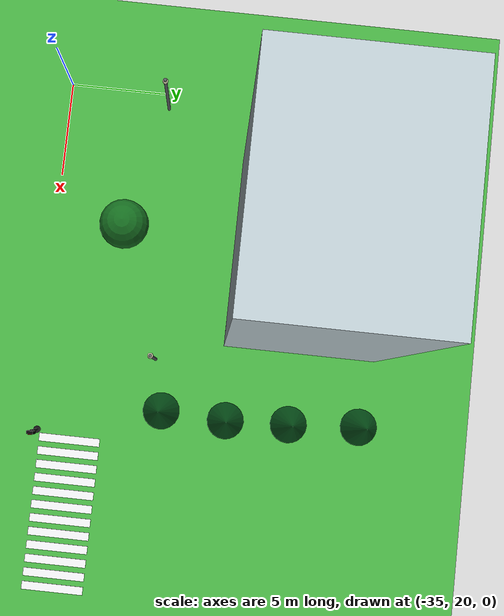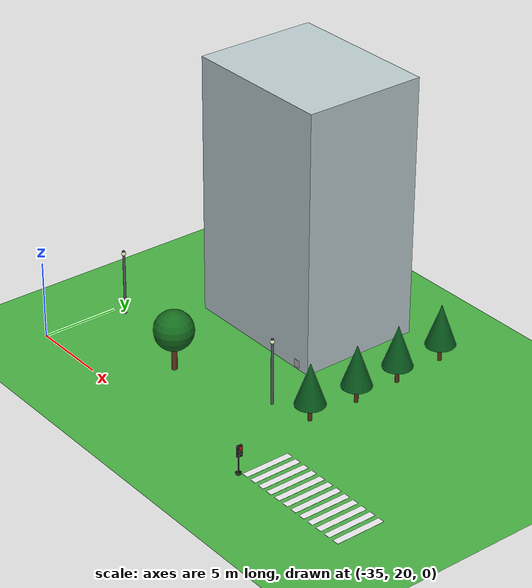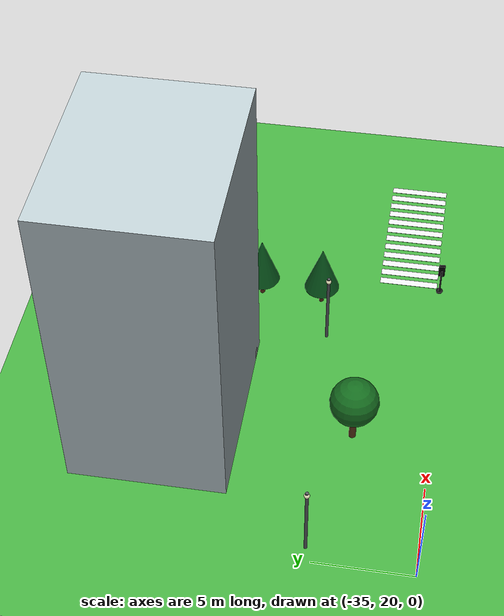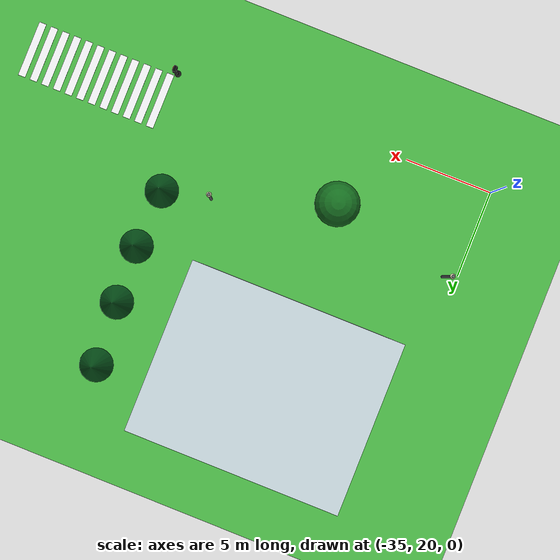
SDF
<sdf version="1.10">
 <world name="city_second">
  <model name="ground_plane">
   <static>true</static>
   <link name="link">
    <collision name="collision">
     <geometry><plane><normal>0 0 1</normal><size>300 300</size></plane></geometry>
    </collision>
    <visual name="visual">
     <geometry><plane><normal>0 0 1</normal><size>300 300</size></plane></geometry>
     <material>
      <ambient>0.280000001 0.689999998 0.25999999 1</ambient>
      <diffuse>0.280000001 0.689999998 0.25999999 1</diffuse>
      <specular>0.0299999993 0.0299999993 0.0299999993 1</specular>
     </material>
    </visual>
    <inertial>
     <mass>1</mass>
     <inertia><ixx>1</ixx><ixy>0</ixy><ixz>0</ixz><iyy>1</iyy><iyz>0</iyz><izz>1</izz></inertia>
    </inertial>
   </link>
  </model>
  <model name="house_3_1_1">
   <static>true</static>
   <pose>-26.744800000000001 33.608600000000003 8.5 0 0 0</pose>
   <link name="link">
    <collision name="collision"><geometry><box><size>10 8 17</size></box></geometry></collision>
    <visual name="visual">
     <geometry><box><size>10 8 17</size></box></geometry>
     <material>
      <ambient>0.74000001 0.800000012 0.819999993 1</ambient>
      <diffuse>0.74000001 0.800000012 0.819999993 1</diffuse>
      <specular>0.0299999993 0.0299999993 0.0299999993 1</specular>
     </material>
    </visual>
    <inertial>
     <mass>1</mass>
     <inertia><ixx>1</ixx><ixy>0</ixy><ixz>0</ixz><iyy>1</iyy><iyz>0</iyz><izz>1</izz></inertia>
    </inertial>
   </link>
  </model>
  <model name="crosswalk_h_1_1_south_7_6">
   <static>true</static>
   <pose>-12.1145 22.0322 0.017000000000000001 0 0 0</pose>
   <link name="stripe_1">
    <collision name="collision">
     <geometry><box><size>0.41999999999999998 3.2000000000000002 0.01</size></box></geometry>
    </collision>
    <visual name="visual">
     <geometry><box><size>0.41999999999999998 3.2000000000000002 0.01</size></box></geometry>
     <material>
      <ambient>0.920000017 0.920000017 0.930000007 1</ambient>
      <diffuse>0.920000017 0.920000017 0.930000007 1</diffuse>
      <specular>0.0299999993 0.0299999993 0.0299999993 1</specular>
     </material>
    </visual>
    <pose>-3.8500000000000001 0 0 0 0 0</pose>
    <inertial>
     <mass>1</mass>
     <inertia><ixx>1</ixx><ixy>0</ixy><ixz>0</ixz><iyy>1</iyy><iyz>0</iyz><izz>1</izz></inertia>
    </inertial>
   </link>
   <link name="stripe_2">
    <collision name="collision">
     <geometry><box><size>0.41999999999999998 3.2000000000000002 0.01</size></box></geometry>
    </collision>
    <visual name="visual">
     <geometry><box><size>0.41999999999999998 3.2000000000000002 0.01</size></box></geometry>
     <material>
      <ambient>0.920000017 0.920000017 0.930000007 1</ambient>
      <diffuse>0.920000017 0.920000017 0.930000007 1</diffuse>
      <specular>0.0299999993 0.0299999993 0.0299999993 1</specular>
     </material>
    </visual>
    <pose>-3.1500000000000004 0 0 0 0 0</pose>
    <inertial>
     <mass>1</mass>
     <inertia><ixx>1</ixx><ixy>0</ixy><ixz>0</ixz><iyy>1</iyy><iyz>0</iyz><izz>1</izz></inertia>
    </inertial>
   </link>
   <link name="stripe_3">
    <collision name="collision">
     <geometry><box><size>0.41999999999999998 3.2000000000000002 0.01</size></box></geometry>
    </collision>
    <visual name="visual">
     <geometry><box><size>0.41999999999999998 3.2000000000000002 0.01</size></box></geometry>
     <material>
      <ambient>0.920000017 0.920000017 0.930000007 1</ambient>
      <diffuse>0.920000017 0.920000017 0.930000007 1</diffuse>
      <specular>0.0299999993 0.0299999993 0.0299999993 1</specular>
     </material>
    </visual>
    <pose>-2.4499999999999993 0 0 0 0 0</pose>
    <inertial>
     <mass>1</mass>
     <inertia><ixx>1</ixx><ixy>0</ixy><ixz>0</ixz><iyy>1</iyy><iyz>0</iyz><izz>1</izz></inertia>
    </inertial>
   </link>
   <link name="stripe_4">
    <collision name="collision">
     <geometry><box><size>0.41999999999999998 3.2000000000000002 0.01</size></box></geometry>
    </collision>
    <visual name="visual">
     <geometry><box><size>0.41999999999999998 3.2000000000000002 0.01</size></box></geometry>
     <material>
      <ambient>0.920000017 0.920000017 0.930000007 1</ambient>
      <diffuse>0.920000017 0.920000017 0.930000007 1</diffuse>
      <specular>0.0299999993 0.0299999993 0.0299999993 1</specular>
     </material>
    </visual>
    <pose>-1.75 0 0 0 0 0</pose>
    <inertial>
     <mass>1</mass>
     <inertia><ixx>1</ixx><ixy>0</ixy><ixz>0</ixz><iyy>1</iyy><iyz>0</iyz><izz>1</izz></inertia>
    </inertial>
   </link>
   <link name="stripe_5">
    <collision name="collision">
     <geometry><box><size>0.41999999999999998 3.2000000000000002 0.01</size></box></geometry>
    </collision>
    <visual name="visual">
     <geometry><box><size>0.41999999999999998 3.2000000000000002 0.01</size></box></geometry>
     <material>
      <ambient>0.920000017 0.920000017 0.930000007 1</ambient>
      <diffuse>0.920000017 0.920000017 0.930000007 1</diffuse>
      <specular>0.0299999993 0.0299999993 0.0299999993 1</specular>
     </material>
    </visual>
    <pose>-1.0500000000000007 0 0 0 0 0</pose>
    <inertial>
     <mass>1</mass>
     <inertia><ixx>1</ixx><ixy>0</ixy><ixz>0</ixz><iyy>1</iyy><iyz>0</iyz><izz>1</izz></inertia>
    </inertial>
   </link>
   <link name="stripe_6">
    <collision name="collision">
     <geometry><box><size>0.41999999999999998 3.2000000000000002 0.01</size></box></geometry>
    </collision>
    <visual name="visual">
     <geometry><box><size>0.41999999999999998 3.2000000000000002 0.01</size></box></geometry>
     <material>
      <ambient>0.920000017 0.920000017 0.930000007 1</ambient>
      <diffuse>0.920000017 0.920000017 0.930000007 1</diffuse>
      <specular>0.0299999993 0.0299999993 0.0299999993 1</specular>
     </material>
    </visual>
    <pose>-0.34999999999999964 0 0 0 0 0</pose>
    <inertial>
     <mass>1</mass>
     <inertia><ixx>1</ixx><ixy>0</ixy><ixz>0</ixz><iyy>1</iyy><iyz>0</iyz><izz>1</izz></inertia>
    </inertial>
   </link>
   <link name="stripe_7">
    <collision name="collision">
     <geometry><box><size>0.41999999999999998 3.2000000000000002 0.01</size></box></geometry>
    </collision>
    <visual name="visual">
     <geometry><box><size>0.41999999999999998 3.2000000000000002 0.01</size></box></geometry>
     <material>
      <ambient>0.920000017 0.920000017 0.930000007 1</ambient>
      <diffuse>0.920000017 0.920000017 0.930000007 1</diffuse>
      <specular>0.0299999993 0.0299999993 0.0299999993 1</specular>
     </material>
    </visual>
    <pose>0.34999999999999964 0 0 0 0 0</pose>
    <inertial>
     <mass>1</mass>
     <inertia><ixx>1</ixx><ixy>0</ixy><ixz>0</ixz><iyy>1</iyy><iyz>0</iyz><izz>1</izz></inertia>
    </inertial>
   </link>
   <link name="stripe_8">
    <collision name="collision">
     <geometry><box><size>0.41999999999999998 3.2000000000000002 0.01</size></box></geometry>
    </collision>
    <visual name="visual">
     <geometry><box><size>0.41999999999999998 3.2000000000000002 0.01</size></box></geometry>
     <material>
      <ambient>0.920000017 0.920000017 0.930000007 1</ambient>
      <diffuse>0.920000017 0.920000017 0.930000007 1</diffuse>
      <specular>0.0299999993 0.0299999993 0.0299999993 1</specular>
     </material>
    </visual>
    <pose>1.0500000000000007 0 0 0 0 0</pose>
    <inertial>
     <mass>1</mass>
     <inertia><ixx>1</ixx><ixy>0</ixy><ixz>0</ixz><iyy>1</iyy><iyz>0</iyz><izz>1</izz></inertia>
    </inertial>
   </link>
   <link name="stripe_9">
    <collision name="collision">
     <geometry><box><size>0.41999999999999998 3.2000000000000002 0.01</size></box></geometry>
    </collision>
    <visual name="visual">
     <geometry><box><size>0.41999999999999998 3.2000000000000002 0.01</size></box></geometry>
     <material>
      <ambient>0.920000017 0.920000017 0.930000007 1</ambient>
      <diffuse>0.920000017 0.920000017 0.930000007 1</diffuse>
      <specular>0.0299999993 0.0299999993 0.0299999993 1</specular>
     </material>
    </visual>
    <pose>1.75 0 0 0 0 0</pose>
    <inertial>
     <mass>1</mass>
     <inertia><ixx>1</ixx><ixy>0</ixy><ixz>0</ixz><iyy>1</iyy><iyz>0</iyz><izz>1</izz></inertia>
    </inertial>
   </link>
   <link name="stripe_10">
    <collision name="collision">
     <geometry><box><size>0.41999999999999998 3.2000000000000002 0.01</size></box></geometry>
    </collision>
    <visual name="visual">
     <geometry><box><size>0.41999999999999998 3.2000000000000002 0.01</size></box></geometry>
     <material>
      <ambient>0.920000017 0.920000017 0.930000007 1</ambient>
      <diffuse>0.920000017 0.920000017 0.930000007 1</diffuse>
      <specular>0.0299999993 0.0299999993 0.0299999993 1</specular>
     </material>
    </visual>
    <pose>2.4499999999999993 0 0 0 0 0</pose>
    <inertial>
     <mass>1</mass>
     <inertia><ixx>1</ixx><ixy>0</ixy><ixz>0</ixz><iyy>1</iyy><iyz>0</iyz><izz>1</izz></inertia>
    </inertial>
   </link>
   <link name="stripe_11">
    <collision name="collision">
     <geometry><box><size>0.41999999999999998 3.2000000000000002 0.01</size></box></geometry>
    </collision>
    <visual name="visual">
     <geometry><box><size>0.41999999999999998 3.2000000000000002 0.01</size></box></geometry>
     <material>
      <ambient>0.920000017 0.920000017 0.930000007 1</ambient>
      <diffuse>0.920000017 0.920000017 0.930000007 1</diffuse>
      <specular>0.0299999993 0.0299999993 0.0299999993 1</specular>
     </material>
    </visual>
    <pose>3.1500000000000004 0 0 0 0 0</pose>
    <inertial>
     <mass>1</mass>
     <inertia><ixx>1</ixx><ixy>0</ixy><ixz>0</ixz><iyy>1</iyy><iyz>0</iyz><izz>1</izz></inertia>
    </inertial>
   </link>
   <link name="stripe_12">
    <collision name="collision">
     <geometry><box><size>0.41999999999999998 3.2000000000000002 0.01</size></box></geometry>
    </collision>
    <visual name="visual">
     <geometry><box><size>0.41999999999999998 3.2000000000000002 0.01</size></box></geometry>
     <material>
      <ambient>0.920000017 0.920000017 0.930000007 1</ambient>
      <diffuse>0.920000017 0.920000017 0.930000007 1</diffuse>
      <specular>0.0299999993 0.0299999993 0.0299999993 1</specular>
     </material>
    </visual>
    <pose>3.8499999999999996 0 0 0 0 0</pose>
    <inertial>
     <mass>1</mass>
     <inertia><ixx>1</ixx><ixy>0</ixy><ixz>0</ixz><iyy>1</iyy><iyz>0</iyz><izz>1</izz></inertia>
    </inertial>
   </link>
  </model>
  <model name="lamp_1_2_16">
   <static>true</static>
   <pose>-34.215200000000003 25.3385 2.2000000000000002 0 0 0</pose>
   <link name="link">
    <collision name="collision">
     <geometry>
      <cylinder><radius>0.080000000000000002</radius><length>4.4000000000000004</length></cylinder>
     </geometry>
    </collision>
    <visual name="pole">
     <geometry>
      <cylinder><radius>0.080000000000000002</radius><length>4.4000000000000004</length></cylinder>
     </geometry>
     <material>
      <ambient>0.349999994 0.360000014 0.379999995 1</ambient>
      <diffuse>0.349999994 0.360000014 0.379999995 1</diffuse>
      <specular>0.0299999993 0.0299999993 0.0299999993 1</specular>
     </material>
    </visual>
    <visual name="lamp_head">
     <pose>0 0 2 0 0 0</pose>
     <geometry><sphere><radius>0.14000000000000001</radius></sphere></geometry>
     <material>
      <ambient>0.959999979 0.939999998 0.779999971 1</ambient>
      <diffuse>0.959999979 0.939999998 0.779999971 1</diffuse>
      <specular>0.0299999993 0.0299999993 0.0299999993 1</specular>
     </material>
    </visual>
    <inertial>
     <mass>1</mass>
     <inertia><ixx>1</ixx><ixy>0</ixy><ixz>0</ixz><iyy>1</iyy><iyz>0</iyz><izz>1</izz></inertia>
    </inertial>
   </link>
  </model>
  <model name="lamp_1_2_17">
   <static>true</static>
   <pose>-20.669599999999999 26.0932 2.2000000000000002 0 0 0</pose>
   <link name="link">
    <collision name="collision">
     <geometry>
      <cylinder><radius>0.080000000000000002</radius><length>4.4000000000000004</length></cylinder>
     </geometry>
    </collision>
    <visual name="pole">
     <geometry>
      <cylinder><radius>0.080000000000000002</radius><length>4.4000000000000004</length></cylinder>
     </geometry>
     <material>
      <ambient>0.349999994 0.360000014 0.379999995 1</ambient>
      <diffuse>0.349999994 0.360000014 0.379999995 1</diffuse>
      <specular>0.0299999993 0.0299999993 0.0299999993 1</specular>
     </material>
    </visual>
    <visual name="lamp_head">
     <pose>0 0 2 0 0 0</pose>
     <geometry><sphere><radius>0.14000000000000001</radius></sphere></geometry>
     <material>
      <ambient>0.959999979 0.939999998 0.779999971 1</ambient>
      <diffuse>0.959999979 0.939999998 0.779999971 1</diffuse>
      <specular>0.0299999993 0.0299999993 0.0299999993 1</specular>
     </material>
    </visual>
    <inertial>
     <mass>1</mass>
     <inertia><ixx>1</ixx><ixy>0</ixy><ixz>0</ixz><iyy>1</iyy><iyz>0</iyz><izz>1</izz></inertia>
    </inertial>
   </link>
  </model>
  <model name="Oak tree_1">
   <static>true</static>
   <pose>-27.205400000000001 23.9285 0 0 0 0</pose>
   <link name="link">
    <collision name="footprint">
     <pose>0 0 0.050000000000000003 0 0 0</pose>
     <geometry>
      <cylinder><radius>0.90000000000000002</radius><length>0.10000000000000001</length></cylinder>
     </geometry>
    </collision>
    <visual name="trunk">
     <pose>0 0 1.1000000000000001 0 0 0</pose>
     <geometry>
      <cylinder><radius>0.17999999999999999</radius><length>2.2000000000000002</length></cylinder>
     </geometry>
     <material>
      <ambient>0.379999995 0.219999999 0.109999999 1</ambient>
      <diffuse>0.379999995 0.219999999 0.109999999 1</diffuse>
      <specular>0.119999997 0.119999997 0.119999997 1</specular>
      <emissive>0 0 0 1</emissive>
     </material>
    </visual>
    <visual name="crown">
     <pose>0 0 2.6499999999999999 0 0 0</pose>
     <geometry><sphere><radius>1.25</radius></sphere></geometry>
     <material>
      <ambient>0.0799999982 0.419999987 0.119999997 1</ambient>
      <diffuse>0.0799999982 0.419999987 0.119999997 1</diffuse>
      <specular>0.119999997 0.119999997 0.119999997 1</specular>
      <emissive>0 0 0 1</emissive>
     </material>
    </visual>
    <inertial>
     <mass>1</mass>
     <inertia><ixx>1</ixx><ixy>0</ixy><ixz>0</ixz><iyy>1</iyy><iyz>0</iyz><izz>1</izz></inertia>
    </inertial>
   </link>
  </model>
  <model name="Pine Tree">
   <static>true</static>
   <pose>-18.249400000000001 36.9146 0 0 0 0</pose>
   <link name="link">
    <collision name="footprint">
     <pose>0 0 0.050000000000000003 0 0 0</pose>
     <geometry>
      <cylinder><radius>0.65000000000000002</radius><length>0.10000000000000001</length></cylinder>
     </geometry>
    </collision>
    <visual name="trunk">
     <pose>0 0 0.90000000000000002 0 0 0</pose>
     <geometry><cylinder><radius>0.13</radius><length>1.8</length></cylinder></geometry>
     <material>
      <ambient>0.360000014 0.200000003 0.100000001 1</ambient>
      <diffuse>0.360000014 0.200000003 0.100000001 1</diffuse>
      <specular>0.119999997 0.119999997 0.119999997 1</specular>
      <emissive>0 0 0 1</emissive>
     </material>
    </visual>
    <visual name="crown">
     <pose>0 0 2.4500000000000002 0 0 0</pose>
     <geometry><cone><radius>0.94999999999999996</radius><length>2.7000000000000002</length></cone></geometry>
     <material>
      <ambient>0.0299999993 0.340000004 0.109999999 1</ambient>
      <diffuse>0.0299999993 0.340000004 0.109999999 1</diffuse>
      <specular>0.119999997 0.119999997 0.119999997 1</specular>
      <emissive>0 0 0 1</emissive>
     </material>
    </visual>
    <inertial>
     <mass>1</mass>
     <inertia><ixx>1</ixx><ixy>0</ixy><ixz>0</ixz><iyy>1</iyy><iyz>0</iyz><izz>1</izz></inertia>
    </inertial>
   </link>
  </model>
  <model name="Pine Tree_0">
   <static>true</static>
   <pose>-18.005600000000001 33.315300000000001 0 0 0 0</pose>
   <link name="link">
    <collision name="footprint">
     <pose>0 0 0.050000000000000003 0 0 0</pose>
     <geometry>
      <cylinder><radius>0.65000000000000002</radius><length>0.10000000000000001</length></cylinder>
     </geometry>
    </collision>
    <visual name="trunk">
     <pose>0 0 0.90000000000000002 0 0 0</pose>
     <geometry><cylinder><radius>0.13</radius><length>1.8</length></cylinder></geometry>
     <material>
      <ambient>0.360000014 0.200000003 0.100000001 1</ambient>
      <diffuse>0.360000014 0.200000003 0.100000001 1</diffuse>
      <specular>0.119999997 0.119999997 0.119999997 1</specular>
      <emissive>0 0 0 1</emissive>
     </material>
    </visual>
    <visual name="crown">
     <pose>0 0 2.4500000000000002 0 0 0</pose>
     <geometry><cone><radius>0.94999999999999996</radius><length>2.7000000000000002</length></cone></geometry>
     <material>
      <ambient>0.0299999993 0.340000004 0.109999999 1</ambient>
      <diffuse>0.0299999993 0.340000004 0.109999999 1</diffuse>
      <specular>0.119999997 0.119999997 0.119999997 1</specular>
      <emissive>0 0 0 1</emissive>
     </material>
    </visual>
    <inertial>
     <mass>1</mass>
     <inertia><ixx>1</ixx><ixy>0</ixy><ixz>0</ixz><iyy>1</iyy><iyz>0</iyz><izz>1</izz></inertia>
    </inertial>
   </link>
  </model>
  <model name="Pine Tree_1">
   <static>true</static>
   <pose>-17.865100000000002 30.0685 0 0 0 0</pose>
   <link name="link">
    <collision name="footprint">
     <pose>0 0 0.050000000000000003 0 0 0</pose>
     <geometry>
      <cylinder><radius>0.65000000000000002</radius><length>0.10000000000000001</length></cylinder>
     </geometry>
    </collision>
    <visual name="trunk">
     <pose>0 0 0.90000000000000002 0 0 0</pose>
     <geometry><cylinder><radius>0.13</radius><length>1.8</length></cylinder></geometry>
     <material>
      <ambient>0.360000014 0.200000003 0.100000001 1</ambient>
      <diffuse>0.360000014 0.200000003 0.100000001 1</diffuse>
      <specular>0.119999997 0.119999997 0.119999997 1</specular>
      <emissive>0 0 0 1</emissive>
     </material>
    </visual>
    <visual name="crown">
     <pose>0 0 2.4500000000000002 0 0 0</pose>
     <geometry><cone><radius>0.94999999999999996</radius><length>2.7000000000000002</length></cone></geometry>
     <material>
      <ambient>0.0299999993 0.340000004 0.109999999 1</ambient>
      <diffuse>0.0299999993 0.340000004 0.109999999 1</diffuse>
      <specular>0.119999997 0.119999997 0.119999997 1</specular>
      <emissive>0 0 0 1</emissive>
     </material>
    </visual>
    <inertial>
     <mass>1</mass>
     <inertia><ixx>1</ixx><ixy>0</ixy><ixz>0</ixz><iyy>1</iyy><iyz>0</iyz><izz>1</izz></inertia>
    </inertial>
   </link>
  </model>
  <model name="Pine Tree_6">
   <static>true</static>
   <pose>-18.019400000000001 26.7318 0 0 0 0</pose>
   <link name="link">
    <collision name="footprint">
     <pose>0 0 0.050000000000000003 0 0 0</pose>
     <geometry>
      <cylinder><radius>0.65000000000000002</radius><length>0.10000000000000001</length></cylinder>
     </geometry>
    </collision>
    <visual name="trunk">
     <pose>0 0 0.90000000000000002 0 0 0</pose>
     <geometry><cylinder><radius>0.13</radius><length>1.8</length></cylinder></geometry>
     <material>
      <ambient>0.360000014 0.200000003 0.100000001 1</ambient>
      <diffuse>0.360000014 0.200000003 0.100000001 1</diffuse>
      <specular>0.119999997 0.119999997 0.119999997 1</specular>
      <emissive>0 0 0 1</emissive>
     </material>
    </visual>
    <visual name="crown">
     <pose>0 0 2.4500000000000002 0 0 0</pose>
     <geometry><cone><radius>0.94999999999999996</radius><length>2.7000000000000002</length></cone></geometry>
     <material>
      <ambient>0.0299999993 0.340000004 0.109999999 1</ambient>
      <diffuse>0.0299999993 0.340000004 0.109999999 1</diffuse>
      <specular>0.119999997 0.119999997 0.119999997 1</specular>
      <emissive>0 0 0 1</emissive>
     </material>
    </visual>
    <inertial>
     <mass>1</mass>
     <inertia><ixx>1</ixx><ixy>0</ixy><ixz>0</ixz><iyy>1</iyy><iyz>0</iyz><izz>1</izz></inertia>
    </inertial>
   </link>
  </model>
  <model name="simple_traffic_light_red_east_6">
   <static>true</static>
   <pose>-16.3438603016297 20.282682133962247 -2.7755575615628914e-17 0 0 -1.5707999672671742</pose>
   <link name="base">
    <pose>0 0 0.040000000000000001 0 0 0</pose>
    <collision name="collision">
     <geometry>
      <cylinder><radius>0.17999999999999999</radius><length>0.080000000000000002</length></cylinder>
     </geometry>
    </collision>
    <visual name="visual">
     <geometry>
      <cylinder><radius>0.17999999999999999</radius><length>0.080000000000000002</length></cylinder>
     </geometry>
     <material>
      <ambient>0.0799999982 0.0799999982 0.0799999982 1</ambient>
      <diffuse>0.0799999982 0.0799999982 0.0799999982 1</diffuse>
      <specular>0.150000006 0.150000006 0.150000006 1</specular>
      <emissive>0 0 0 1</emissive>
     </material>
    </visual>
    <inertial>
     <mass>1</mass>
     <inertia><ixx>1</ixx><ixy>0</ixy><ixz>0</ixz><iyy>1</iyy><iyz>0</iyz><izz>1</izz></inertia>
    </inertial>
   </link>
   <link name="pole">
    <pose>-3.907985046680551e-14 -1.4210854715202004e-14 0.80000000000000004 0 0 -6.6613381477509392e-16</pose>
    <collision name="collision">
     <geometry>
      <cylinder><radius>0.044999999999999998</radius><length>1.6000000000000001</length></cylinder>
     </geometry>
    </collision>
    <visual name="visual">
     <geometry>
      <cylinder><radius>0.044999999999999998</radius><length>1.6000000000000001</length></cylinder>
     </geometry>
     <material>
      <ambient>0.0799999982 0.0799999982 0.0799999982 1</ambient>
      <diffuse>0.0799999982 0.0799999982 0.0799999982 1</diffuse>
      <specular>0.150000006 0.150000006 0.150000006 1</specular>
      <emissive>0 0 0 1</emissive>
     </material>
    </visual>
    <inertial>
     <mass>1</mass>
     <inertia><ixx>1</ixx><ixy>0</ixy><ixz>0</ixz><iyy>1</iyy><iyz>0</iyz><izz>1</izz></inertia>
    </inertial>
   </link>
   <link name="signal_box">
    <pose>-2.1316282072803006e-14 0.089999999999982094 1.5500000000000003 0 0 -6.6613381477509392e-16</pose>
    <collision name="collision">
     <geometry><box><size>0.34000000000000002 0.16 0.71999999999999997</size></box></geometry>
    </collision>
    <visual name="visual">
     <geometry><box><size>0.34000000000000002 0.16 0.71999999999999997</size></box></geometry>
     <material>
      <ambient>0.0199999996 0.0199999996 0.0199999996 1</ambient>
      <diffuse>0.0199999996 0.0199999996 0.0199999996 1</diffuse>
      <specular>0.150000006 0.150000006 0.150000006 1</specular>
      <emissive>0 0 0 1</emissive>
     </material>
    </visual>
    <inertial>
     <mass>1</mass>
     <inertia><ixx>1</ixx><ixy>0</ixy><ixz>0</ixz><iyy>1</iyy><iyz>0</iyz><izz>1</izz></inertia>
    </inertial>
   </link>
   <link name="red_lens">
    <pose>-2.1316282072803006e-14 0.18099999999997607 1.7800000000000002 1.5707963267999998 -2.3551386881478525e-16 4.7887819989849136e-15</pose>
    <collision name="collision">
     <geometry><cylinder><radius>0.105</radius><length>0.035000000000000003</length></cylinder></geometry>
    </collision>
    <visual name="visual">
     <geometry><cylinder><radius>0.105</radius><length>0.035000000000000003</length></cylinder></geometry>
     <material>
      <ambient>1 0.0199999996 0.0199999996 1</ambient>
      <diffuse>1 0.0199999996 0.0199999996 1</diffuse>
      <specular>0.150000006 0.150000006 0.150000006 1</specular>
      <emissive>1 0.0199999996 0.0199999996 1</emissive>
     </material>
    </visual>
    <inertial>
     <mass>1</mass>
     <inertia><ixx>1</ixx><ixy>0</ixy><ixz>0</ixz><iyy>1</iyy><iyz>0</iyz><izz>1</izz></inertia>
    </inertial>
   </link>
   <link name="yellow_lens">
    <pose>-3.5527136788005009e-14 0.1819999999999844 1.5500000000000003 1.5707963267999998 -2.3551386881478525e-16 4.7887819989849136e-15</pose>
    <collision name="collision">
     <geometry>
      <cylinder><radius>0.095000000000000001</radius><length>0.035000000000000003</length></cylinder>
     </geometry>
    </collision>
    <visual name="visual">
     <geometry>
      <cylinder><radius>0.095000000000000001</radius><length>0.035000000000000003</length></cylinder>
     </geometry>
     <material>
      <ambient>0.119999997 0.100000001 0.0199999996 1</ambient>
      <diffuse>0.119999997 0.100000001 0.0199999996 1</diffuse>
      <specular>0.150000006 0.150000006 0.150000006 1</specular>
      <emissive>0 0 0 1</emissive>
     </material>
    </visual>
    <inertial>
     <mass>1</mass>
     <inertia><ixx>1</ixx><ixy>0</ixy><ixz>0</ixz><iyy>1</iyy><iyz>0</iyz><izz>1</izz></inertia>
    </inertial>
   </link>
   <link name="green_lens">
    <pose>-3.1974423109204508e-14 0.18299999999999628 1.3199999999999998 1.5707963267999998 -2.3551386881478525e-16 4.7887819989849136e-15</pose>
    <collision name="collision">
     <geometry><cylinder><radius>0.105</radius><length>0.035000000000000003</length></cylinder></geometry>
    </collision>
    <visual name="visual">
     <geometry><cylinder><radius>0.105</radius><length>0.035000000000000003</length></cylinder></geometry>
     <material>
      <ambient>0.0799999982 0.0799999982 0.0799999982 1</ambient>
      <diffuse>0.0799999982 0.0799999982 0.0799999982 1</diffuse>
      <specular>0.150000006 0.150000006 0.150000006 1</specular>
      <emissive>0 0 0 1</emissive>
     </material>
    </visual>
    <inertial>
     <mass>1</mass>
     <inertia><ixx>1</ixx><ixy>0</ixy><ixz>0</ixz><iyy>1</iyy><iyz>0</iyz><izz>1</izz></inertia>
    </inertial>
   </link>
  </model>
  <model name="Apriltag36_11_00000_0">
   <link name="link">
    <inertial>
     <mass>0.5</mass>
     <inertia><ixx>0.0001</ixx><ixy>0</ixy><ixz>0</ixz><iyy>0.0001</iyy><iyz>0</iyz><izz>0.0001</izz></inertia>
    </inertial>
    <collision name="collision">
     <geometry>
      <mesh><uri>model://Apriltag36_11_00000/meshes/tag36_11_00000.dae</uri><scale>1.25 1.25 1</scale></mesh>
     </geometry>
     <surface>
      <friction><ode><mu>1</mu><mu2>1</mu2></ode></friction>
      <contact>
       <ode><kp>10000000</kp><kd>1</kd><min_depth>0.001</min_depth><max_vel>0.10000000000000001</max_vel></ode>
      </contact>
     </surface>
    </collision>
    <visual name="visual">
     <geometry>
      <mesh><uri>model://Apriltag36_11_00000/meshes/tag36_11_00000.dae</uri><scale>1.25 1.25 1</scale></mesh>
     </geometry>
    </visual>
   </link>
   <pose>-22.743400573730469 29.606100082397461 0.34999999403953552 -1.573483597507588 1.5707899788652488 3.1348903219362985</pose>
   <static>true</static>
  </model>
 </world>
</sdf>
